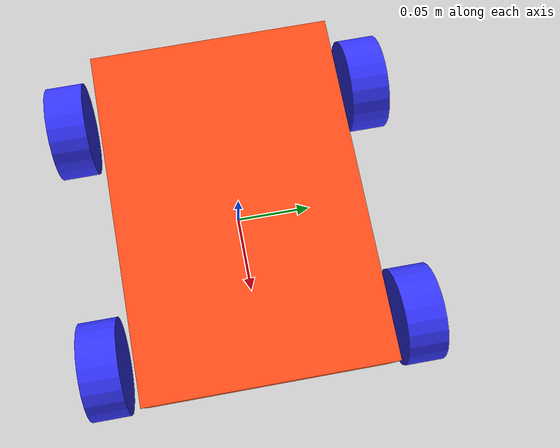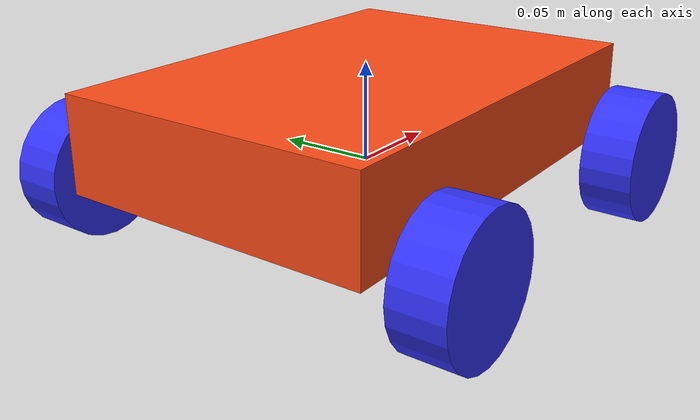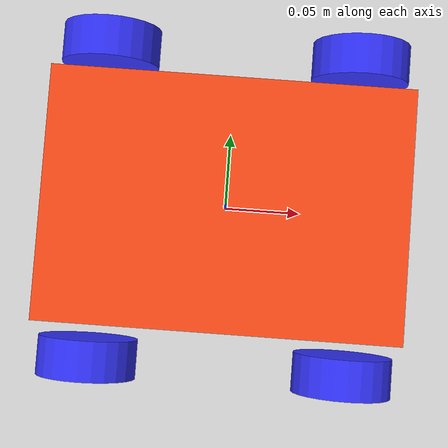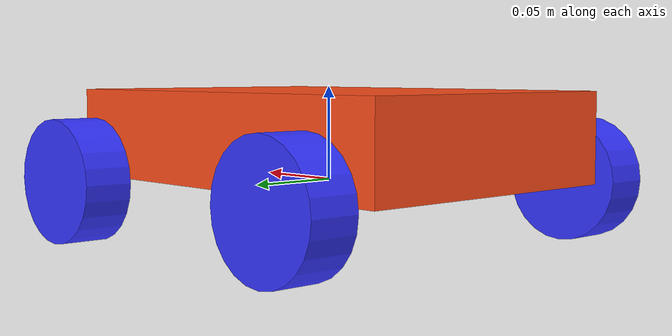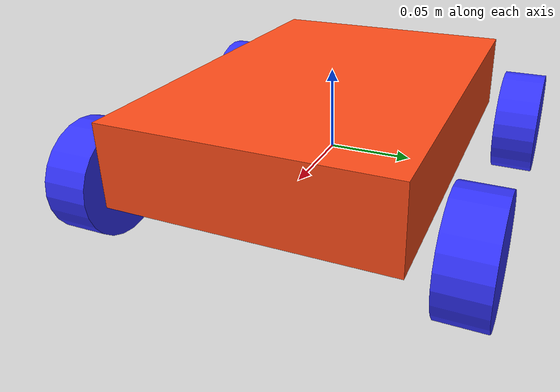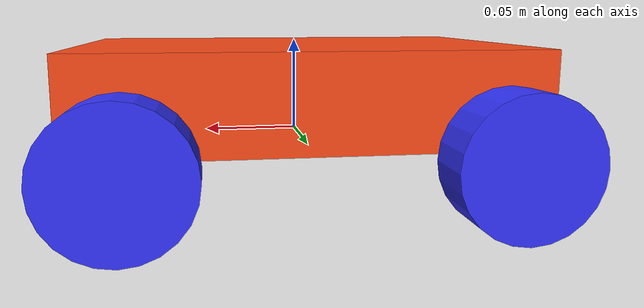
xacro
<?xml version="1.0"?>
<robot xmlns:xacro="http://www.ros.org/wiki/xacro">

    <xacro:include filename="inertial_macros.xacro"/>

    <xacro:property name="chassis_length" value="0.23"/>
    <xacro:property name="chassis_width" value="0.16"/>
    <xacro:property name="chassis_height" value="0.048"/>
    <xacro:property name="chassis_mass" value="1.0"/>

    <xacro:property name="wheel_radius" value="0.033"/>
    <xacro:property name="wheel_thickness" value="0.026"/>
    <xacro:property name="wheel_mass" value="0.1"/>
    <xacro:property name="wheel_offset_x" value="0.085"/>
    <xacro:property name="wheel_offset_y" value="0.105"/>
    <xacro:property name="wheel_offset_z" value="0.0"/>

    <material name="white">
        <color rgba="1 1 1 1" />
    </material>

    <material name="orange">
        <color rgba="1 0.3 0.1 1"/>
    </material>

    <material name="blue">
        <color rgba="0.2 0.2 1 1"/>
    </material>

    <material name="black">
        <color rgba="0 0 0 1"/>
    </material>

    <material name="red">
        <color rgba="1 0 0 1"/>
    </material>

    <material name="yellow">
        <color rgba="1.0 1.0 0.0 1.0"/>
    </material>

    <!-- BASE LINK -->

    <link name="base_link">

    </link>

    <!-- BASE_FOOTPRINT LINK -->

    <joint name="base_footprint_joint" type="fixed">
        <parent link="base_link"/>
        <child link="base_footprint"/>
        <origin xyz="0 0 0" rpy="0 0 0"/>
    </joint>

    <link name="base_footprint">
    </link>

    <!-- CHASSIS LINK -->

    <joint name="chassis_joint" type="fixed">
        <parent link="base_link"/>
        <child link="chassis"/>
        <origin xyz="${-chassis_length/2} 0 ${-wheel_offset_z}"/>
    </joint>

    <link name="chassis">
        <visual>
            <origin xyz="${chassis_length/2} 0 ${chassis_height/2}"/>
            <geometry>
                <box size="${chassis_length} ${chassis_width} ${chassis_height}"/>
            </geometry>
            <material name="orange"/>
        </visual>
        <collision>
            <origin xyz="${chassis_length/2} 0 ${chassis_height/2}"/>
            <geometry>
                <box size="${chassis_length} ${chassis_width} ${chassis_height}"/>
            </geometry>
        </collision>
        <xacro:inertial_box mass="0.5" x="${chassis_length}" y="${chassis_width}" z="${chassis_height}">
            <origin xyz="${chassis_length/2} 0 ${chassis_height/2}" rpy="0 0 0"/>
        </xacro:inertial_box>
    </link>

    <gazebo reference="chassis">
        <material>Gazebo/Yellow</material>
    </gazebo>

    <!-- FRONT LEFT WHEEL LINK -->

    <joint name="front_left_wheel_joint" type="continuous">
        <parent link="base_link"/>
        <child link="front_left_wheel"/>
        <origin xyz="-0.085 ${wheel_offset_y} 0" rpy="-${pi/2} 0 0" />
        <axis xyz="0 0 1"/>
    </joint>

    <link name="front_left_wheel">
        <visual>
            <geometry>
                <cylinder radius="${wheel_radius}" length="${wheel_thickness}"/>
            </geometry>
            <material name="blue"/>
        </visual>
        <collision>
            <geometry>
                <sphere radius="${wheel_radius}"/>
            </geometry>
        </collision>
        <xacro:inertial_cylinder mass="${wheel_mass}" length="${wheel_thickness}" radius="${wheel_radius}">
            <origin xyz="0 0 0" rpy="0 0 0"/>
        </xacro:inertial_cylinder>
    </link>

    <gazebo reference="front_left_wheel">
        <material>Gazebo/Blue</material>
    </gazebo>

    <!-- REAR LEFT WHEEL LINK -->

    <joint name="rear_left_wheel_joint" type="continuous">
        <parent link="base_link"/>
        <child link="rear_left_wheel"/>
        <origin xyz="0.085 ${wheel_offset_y} 0" rpy="-${pi/2} 0 0" />
        <axis xyz="0 0 1"/>
    </joint>

    <link name="rear_left_wheel">
        <visual>
            <geometry>
                <cylinder radius="${wheel_radius}" length="${wheel_thickness}"/>
            </geometry>
            <material name="blue"/>
        </visual>
        <collision>
            <geometry>
                <sphere radius="${wheel_radius}"/>
            </geometry>
        </collision>
        <xacro:inertial_cylinder mass="${wheel_mass}" length="${wheel_thickness}" radius="${wheel_radius}">
            <origin xyz="0 0 0" rpy="0 0 0"/>
        </xacro:inertial_cylinder>
    </link>

    <gazebo reference="rear_left_wheel">
        <material>Gazebo/Blue</material>
    </gazebo>

    <!-- FRONT RIGHT WHEEL LINK -->

    <joint name="front_right_wheel_joint" type="continuous">
        <parent link="base_link"/>
        <child link="front_right_wheel"/>
        <origin xyz="-0.085 ${-wheel_offset_y} 0" rpy="${pi/2} 0 0" />
        <axis xyz="0 0 -1"/>
    </joint>

    <link name="front_right_wheel">
        <visual>
            <geometry>
                <cylinder radius="${wheel_radius}" length="${wheel_thickness}"/>
            </geometry>
            <material name="blue"/>
        </visual>
        <collision>
            <geometry>
                <sphere radius="${wheel_radius}"/>
            </geometry>
        </collision>
        <xacro:inertial_cylinder mass="${wheel_mass}" length="${wheel_thickness}" radius="${wheel_radius}">
            <origin xyz="0 0 0" rpy="0 0 0"/>
        </xacro:inertial_cylinder>
    </link>

    <gazebo reference="front_right_wheel">
        <material>Gazebo/Blue</material>
    </gazebo>

    <!-- REAR RIGHT WHEEL LINK -->

    <joint name="rear_right_wheel_joint" type="continuous">
        <parent link="base_link"/>
        <child link="rear_right_wheel"/>
        <origin xyz="0.085 ${-wheel_offset_y} 0" rpy="${pi/2} 0 0" />
        <axis xyz="0 0 -1"/>
    </joint>

    <link name="rear_right_wheel">
        <visual>
            <geometry>
                <cylinder radius="${wheel_radius}" length="${wheel_thickness}"/>
            </geometry>
            <material name="blue"/>
        </visual>
        <collision>
            <geometry>
                <sphere radius="${wheel_radius}"/>
            </geometry>
        </collision>
        <xacro:inertial_cylinder mass="${wheel_mass}" length="${wheel_thickness}" radius="${wheel_radius}">
            <origin xyz="0 0 0" rpy="0 0 0"/>
        </xacro:inertial_cylinder>
    </link>

    <gazebo reference="rear_right_wheel">
        <material>Gazebo/Blue</material>
    </gazebo>

</robot>

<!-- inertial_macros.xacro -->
<robot xmlns:xacro="http://www.ros.org/wiki/xacro" >

    <!-- Specify some standard inertial calculations https://en.wikipedia.org/wiki/List_of_moments_of_inertia -->
    <!-- These make use of xacro's mathematical functionality -->

    <xacro:macro name="inertial_sphere" params="mass radius *origin">
        <inertial>
            <xacro:insert_block name="origin"/>
            <mass value="${mass}" />
            <inertia ixx="${(2/5) * mass * (radius*radius)}" ixy="0.0" ixz="0.0"
                    iyy="${(2/5) * mass * (radius*radius)}" iyz="0.0"
                    izz="${(2/5) * mass * (radius*radius)}" />
        </inertial>
    </xacro:macro>

    <xacro:macro name="inertial_box" params="mass x y z *origin">
        <inertial>
            <xacro:insert_block name="origin"/>
            <mass value="${mass}" />
            <inertia ixx="${(1/12) * mass * (y*y+z*z)}" ixy="0.0" ixz="0.0"
                    iyy="${(1/12) * mass * (x*x+z*z)}" iyz="0.0"
                    izz="${(1/12) * mass * (x*x+y*y)}" />
        </inertial>
    </xacro:macro>

    <xacro:macro name="inertial_cylinder" params="mass length radius *origin">
        <inertial>
            <xacro:insert_block name="origin"/>
            <mass value="${mass}" />
            <inertia ixx="${(1/12) * mass * (3*radius*radius + length*length)}" ixy="0.0" ixz="0.0"
                    iyy="${(1/12) * mass * (3*radius*radius + length*length)}" iyz="0.0"
                    izz="${(1/2) * mass * (radius*radius)}" />
        </inertial>
    </xacro:macro>

</robot>
